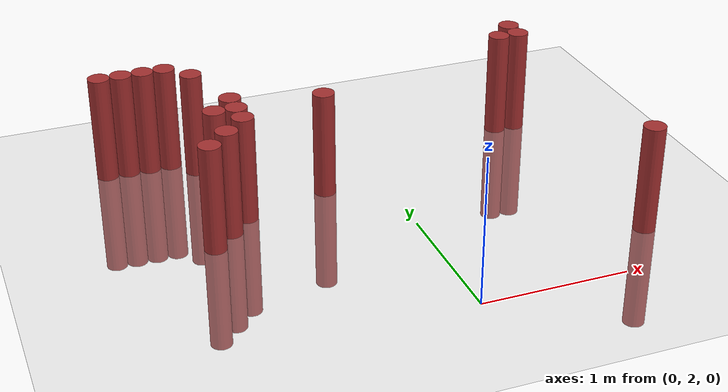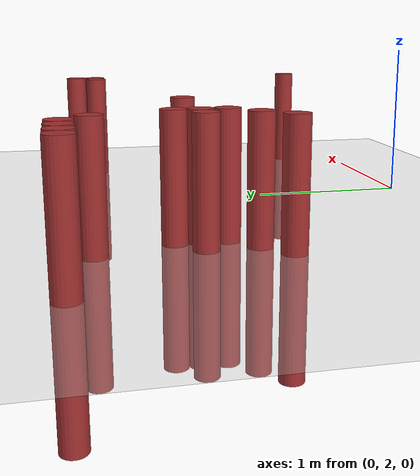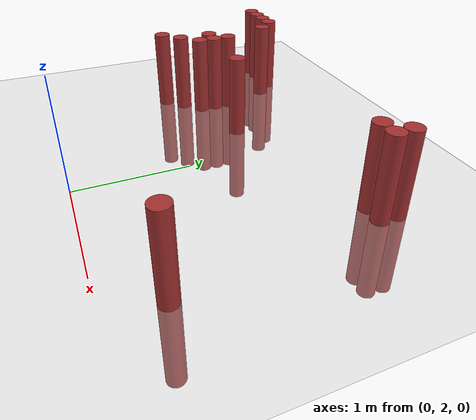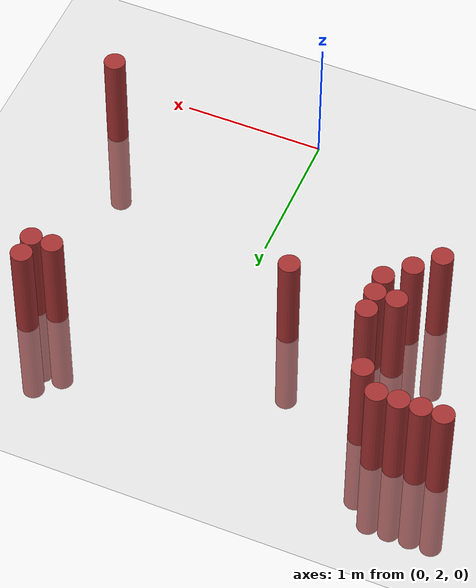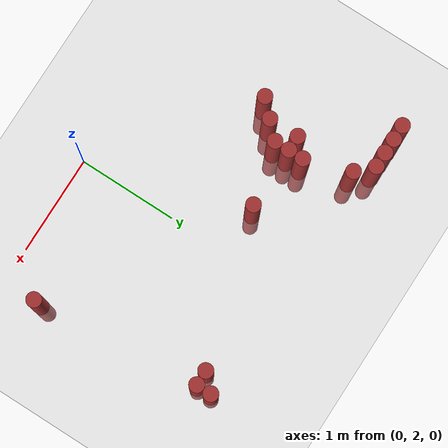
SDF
<sdf version="1.6">
 <world name="default">
  <model name="ground_plane">
   <static>1</static>
   <link name="link">
    <collision name="collision">
     <geometry><plane><normal>0 0 1</normal><size>100 100</size></plane></geometry>
     <surface><friction><ode><mu>100</mu><mu2>50</mu2></ode></friction></surface>
    </collision>
    <visual name="visual">
     <cast_shadows>0</cast_shadows>
     <geometry><plane><normal>0 0 1</normal><size>100 100</size></plane></geometry>
     <material>
      <script><uri>file://media/materials/scripts/gazebo.material</uri><name>Gazebo/Grey</name></script>
     </material>
    </visual>
   </link>
  </model>
  <model name="unit_cylinder_132">
   <static>1</static>
   <pose>-1.775000 4.375000 0.000000 0.000000 0.000000 0.000000</pose>
   <link name="link">
    <inertial>
     <mass>1</mass>
     <inertia><ixx>0.145833</ixx><ixy>0</ixy><ixz>0</ixz><iyy>0.145833</iyy><iyz>0</iyz><izz>0.125</izz></inertia>
    </inertial>
    <collision name="collision">
     <geometry><cylinder><radius>0.075000</radius><length>1.5</length></cylinder></geometry>
    </collision>
    <visual name="visual">
     <geometry><cylinder><radius>0.075000</radius><length>1.5</length></cylinder></geometry>
     <material>
      <ambient>0.648000 0.192000 0.192000 1</ambient>
      <diffuse>0.648000 0.192000 0.192000 1</diffuse>
     </material>
     <material>
      <script><name>Gazebo/Grey</name><uri>file://media/materials/scripts/gazebo.material</uri></script>
     </material>
    </visual>
   </link>
  </model>
  <model name="unit_cylinder_137">
   <static>1</static>
   <pose>-1.625000 4.375000 0.000000 0.000000 0.000000 0.000000</pose>
   <link name="link">
    <inertial>
     <mass>1</mass>
     <inertia><ixx>0.145833</ixx><ixy>0</ixy><ixz>0</ixz><iyy>0.145833</iyy><iyz>0</iyz><izz>0.125</izz></inertia>
    </inertial>
    <collision name="collision">
     <geometry><cylinder><radius>0.075000</radius><length>1.5</length></cylinder></geometry>
    </collision>
    <visual name="visual">
     <geometry><cylinder><radius>0.075000</radius><length>1.5</length></cylinder></geometry>
     <material>
      <ambient>0.648000 0.192000 0.192000 1</ambient>
      <diffuse>0.648000 0.192000 0.192000 1</diffuse>
     </material>
     <material>
      <script><name>Gazebo/Grey</name><uri>file://media/materials/scripts/gazebo.material</uri></script>
     </material>
    </visual>
   </link>
  </model>
  <model name="unit_cylinder_141">
   <static>1</static>
   <pose>-1.475000 4.375000 0.000000 0.000000 0.000000 0.000000</pose>
   <link name="link">
    <inertial>
     <mass>1</mass>
     <inertia><ixx>0.145833</ixx><ixy>0</ixy><ixz>0</ixz><iyy>0.145833</iyy><iyz>0</iyz><izz>0.125</izz></inertia>
    </inertial>
    <collision name="collision">
     <geometry><cylinder><radius>0.075000</radius><length>1.5</length></cylinder></geometry>
    </collision>
    <visual name="visual">
     <geometry><cylinder><radius>0.075000</radius><length>1.5</length></cylinder></geometry>
     <material>
      <ambient>0.648000 0.192000 0.192000 1</ambient>
      <diffuse>0.648000 0.192000 0.192000 1</diffuse>
     </material>
     <material>
      <script><name>Gazebo/Grey</name><uri>file://media/materials/scripts/gazebo.material</uri></script>
     </material>
    </visual>
   </link>
  </model>
  <model name="unit_cylinder_149">
   <static>1</static>
   <pose>-1.325000 3.175000 0.000000 0.000000 0.000000 0.000000</pose>
   <link name="link">
    <inertial>
     <mass>1</mass>
     <inertia><ixx>0.145833</ixx><ixy>0</ixy><ixz>0</ixz><iyy>0.145833</iyy><iyz>0</iyz><izz>0.125</izz></inertia>
    </inertial>
    <collision name="collision">
     <geometry><cylinder><radius>0.075000</radius><length>1.5</length></cylinder></geometry>
    </collision>
    <visual name="visual">
     <geometry><cylinder><radius>0.075000</radius><length>1.5</length></cylinder></geometry>
     <material>
      <ambient>0.648000 0.192000 0.192000 1</ambient>
      <diffuse>0.648000 0.192000 0.192000 1</diffuse>
     </material>
     <material>
      <script><name>Gazebo/Grey</name><uri>file://media/materials/scripts/gazebo.material</uri></script>
     </material>
    </visual>
   </link>
  </model>
  <model name="unit_cylinder_150">
   <static>1</static>
   <pose>-1.325000 4.375000 0.000000 0.000000 0.000000 0.000000</pose>
   <link name="link">
    <inertial>
     <mass>1</mass>
     <inertia><ixx>0.145833</ixx><ixy>0</ixy><ixz>0</ixz><iyy>0.145833</iyy><iyz>0</iyz><izz>0.125</izz></inertia>
    </inertial>
    <collision name="collision">
     <geometry><cylinder><radius>0.075000</radius><length>1.5</length></cylinder></geometry>
    </collision>
    <visual name="visual">
     <geometry><cylinder><radius>0.075000</radius><length>1.5</length></cylinder></geometry>
     <material>
      <ambient>0.648000 0.192000 0.192000 1</ambient>
      <diffuse>0.648000 0.192000 0.192000 1</diffuse>
     </material>
     <material>
      <script><name>Gazebo/Grey</name><uri>file://media/materials/scripts/gazebo.material</uri></script>
     </material>
    </visual>
   </link>
  </model>
  <model name="unit_cylinder_155">
   <static>1</static>
   <pose>-1.175000 3.325000 0.000000 0.000000 0.000000 0.000000</pose>
   <link name="link">
    <inertial>
     <mass>1</mass>
     <inertia><ixx>0.145833</ixx><ixy>0</ixy><ixz>0</ixz><iyy>0.145833</iyy><iyz>0</iyz><izz>0.125</izz></inertia>
    </inertial>
    <collision name="collision">
     <geometry><cylinder><radius>0.075000</radius><length>1.5</length></cylinder></geometry>
    </collision>
    <visual name="visual">
     <geometry><cylinder><radius>0.075000</radius><length>1.5</length></cylinder></geometry>
     <material>
      <ambient>0.648000 0.192000 0.192000 1</ambient>
      <diffuse>0.648000 0.192000 0.192000 1</diffuse>
     </material>
     <material>
      <script><name>Gazebo/Grey</name><uri>file://media/materials/scripts/gazebo.material</uri></script>
     </material>
    </visual>
   </link>
  </model>
  <model name="unit_cylinder_156">
   <static>1</static>
   <pose>-1.175000 3.625000 0.000000 0.000000 0.000000 0.000000</pose>
   <link name="link">
    <inertial>
     <mass>1</mass>
     <inertia><ixx>0.145833</ixx><ixy>0</ixy><ixz>0</ixz><iyy>0.145833</iyy><iyz>0</iyz><izz>0.125</izz></inertia>
    </inertial>
    <collision name="collision">
     <geometry><cylinder><radius>0.075000</radius><length>1.5</length></cylinder></geometry>
    </collision>
    <visual name="visual">
     <geometry><cylinder><radius>0.075000</radius><length>1.5</length></cylinder></geometry>
     <material>
      <ambient>0.648000 0.192000 0.192000 1</ambient>
      <diffuse>0.648000 0.192000 0.192000 1</diffuse>
     </material>
     <material>
      <script><name>Gazebo/Grey</name><uri>file://media/materials/scripts/gazebo.material</uri></script>
     </material>
    </visual>
   </link>
  </model>
  <model name="unit_cylinder_157">
   <static>1</static>
   <pose>-1.175000 4.225000 0.000000 0.000000 0.000000 0.000000</pose>
   <link name="link">
    <inertial>
     <mass>1</mass>
     <inertia><ixx>0.145833</ixx><ixy>0</ixy><ixz>0</ixz><iyy>0.145833</iyy><iyz>0</iyz><izz>0.125</izz></inertia>
    </inertial>
    <collision name="collision">
     <geometry><cylinder><radius>0.075000</radius><length>1.5</length></cylinder></geometry>
    </collision>
    <visual name="visual">
     <geometry><cylinder><radius>0.075000</radius><length>1.5</length></cylinder></geometry>
     <material>
      <ambient>0.648000 0.192000 0.192000 1</ambient>
      <diffuse>0.648000 0.192000 0.192000 1</diffuse>
     </material>
     <material>
      <script><name>Gazebo/Grey</name><uri>file://media/materials/scripts/gazebo.material</uri></script>
     </material>
    </visual>
   </link>
  </model>
  <model name="unit_cylinder_160">
   <static>1</static>
   <pose>-1.025000 3.475000 0.000000 0.000000 0.000000 0.000000</pose>
   <link name="link">
    <inertial>
     <mass>1</mass>
     <inertia><ixx>0.145833</ixx><ixy>0</ixy><ixz>0</ixz><iyy>0.145833</iyy><iyz>0</iyz><izz>0.125</izz></inertia>
    </inertial>
    <collision name="collision">
     <geometry><cylinder><radius>0.075000</radius><length>1.5</length></cylinder></geometry>
    </collision>
    <visual name="visual">
     <geometry><cylinder><radius>0.075000</radius><length>1.5</length></cylinder></geometry>
     <material>
      <ambient>0.648000 0.192000 0.192000 1</ambient>
      <diffuse>0.648000 0.192000 0.192000 1</diffuse>
     </material>
     <material>
      <script><name>Gazebo/Grey</name><uri>file://media/materials/scripts/gazebo.material</uri></script>
     </material>
    </visual>
   </link>
  </model>
  <model name="unit_cylinder_161">
   <static>1</static>
   <pose>-1.025000 3.625000 0.000000 0.000000 0.000000 0.000000</pose>
   <link name="link">
    <inertial>
     <mass>1</mass>
     <inertia><ixx>0.145833</ixx><ixy>0</ixy><ixz>0</ixz><iyy>0.145833</iyy><iyz>0</iyz><izz>0.125</izz></inertia>
    </inertial>
    <collision name="collision">
     <geometry><cylinder><radius>0.075000</radius><length>1.5</length></cylinder></geometry>
    </collision>
    <visual name="visual">
     <geometry><cylinder><radius>0.075000</radius><length>1.5</length></cylinder></geometry>
     <material>
      <ambient>0.648000 0.192000 0.192000 1</ambient>
      <diffuse>0.648000 0.192000 0.192000 1</diffuse>
     </material>
     <material>
      <script><name>Gazebo/Grey</name><uri>file://media/materials/scripts/gazebo.material</uri></script>
     </material>
    </visual>
   </link>
  </model>
  <model name="unit_cylinder_162">
   <static>1</static>
   <pose>-1.025000 3.775000 0.000000 0.000000 0.000000 0.000000</pose>
   <link name="link">
    <inertial>
     <mass>1</mass>
     <inertia><ixx>0.145833</ixx><ixy>0</ixy><ixz>0</ixz><iyy>0.145833</iyy><iyz>0</iyz><izz>0.125</izz></inertia>
    </inertial>
    <collision name="collision">
     <geometry><cylinder><radius>0.075000</radius><length>1.5</length></cylinder></geometry>
    </collision>
    <visual name="visual">
     <geometry><cylinder><radius>0.075000</radius><length>1.5</length></cylinder></geometry>
     <material>
      <ambient>0.648000 0.192000 0.192000 1</ambient>
      <diffuse>0.648000 0.192000 0.192000 1</diffuse>
     </material>
     <material>
      <script><name>Gazebo/Grey</name><uri>file://media/materials/scripts/gazebo.material</uri></script>
     </material>
    </visual>
   </link>
  </model>
  <model name="unit_cylinder_174">
   <static>1</static>
   <pose>-0.425000 3.625000 0.000000 0.000000 0.000000 0.000000</pose>
   <link name="link">
    <inertial>
     <mass>1</mass>
     <inertia><ixx>0.145833</ixx><ixy>0</ixy><ixz>0</ixz><iyy>0.145833</iyy><iyz>0</iyz><izz>0.125</izz></inertia>
    </inertial>
    <collision name="collision">
     <geometry><cylinder><radius>0.075000</radius><length>1.5</length></cylinder></geometry>
    </collision>
    <visual name="visual">
     <geometry><cylinder><radius>0.075000</radius><length>1.5</length></cylinder></geometry>
     <material>
      <ambient>0.648000 0.192000 0.192000 1</ambient>
      <diffuse>0.648000 0.192000 0.192000 1</diffuse>
     </material>
     <material>
      <script><name>Gazebo/Grey</name><uri>file://media/materials/scripts/gazebo.material</uri></script>
     </material>
    </visual>
   </link>
  </model>
  <model name="unit_cylinder_180">
   <static>1</static>
   <pose>1.075000 4.075000 0.000000 0.000000 0.000000 0.000000</pose>
   <link name="link">
    <inertial>
     <mass>1</mass>
     <inertia><ixx>0.145833</ixx><ixy>0</ixy><ixz>0</ixz><iyy>0.145833</iyy><iyz>0</iyz><izz>0.125</izz></inertia>
    </inertial>
    <collision name="collision">
     <geometry><cylinder><radius>0.075000</radius><length>1.5</length></cylinder></geometry>
    </collision>
    <visual name="visual">
     <geometry><cylinder><radius>0.075000</radius><length>1.5</length></cylinder></geometry>
     <material>
      <ambient>0.648000 0.192000 0.192000 1</ambient>
      <diffuse>0.648000 0.192000 0.192000 1</diffuse>
     </material>
     <material>
      <script><name>Gazebo/Grey</name><uri>file://media/materials/scripts/gazebo.material</uri></script>
     </material>
    </visual>
   </link>
  </model>
  <model name="unit_cylinder_183">
   <static>1</static>
   <pose>1.225000 4.075000 0.000000 0.000000 0.000000 0.000000</pose>
   <link name="link">
    <inertial>
     <mass>1</mass>
     <inertia><ixx>0.145833</ixx><ixy>0</ixy><ixz>0</ixz><iyy>0.145833</iyy><iyz>0</iyz><izz>0.125</izz></inertia>
    </inertial>
    <collision name="collision">
     <geometry><cylinder><radius>0.075000</radius><length>1.5</length></cylinder></geometry>
    </collision>
    <visual name="visual">
     <geometry><cylinder><radius>0.075000</radius><length>1.5</length></cylinder></geometry>
     <material>
      <ambient>0.648000 0.192000 0.192000 1</ambient>
      <diffuse>0.648000 0.192000 0.192000 1</diffuse>
     </material>
     <material>
      <script><name>Gazebo/Grey</name><uri>file://media/materials/scripts/gazebo.material</uri></script>
     </material>
    </visual>
   </link>
  </model>
  <model name="unit_cylinder_184">
   <static>1</static>
   <pose>1.225000 4.225000 0.000000 0.000000 0.000000 0.000000</pose>
   <link name="link">
    <inertial>
     <mass>1</mass>
     <inertia><ixx>0.145833</ixx><ixy>0</ixy><ixz>0</ixz><iyy>0.145833</iyy><iyz>0</iyz><izz>0.125</izz></inertia>
    </inertial>
    <collision name="collision">
     <geometry><cylinder><radius>0.075000</radius><length>1.5</length></cylinder></geometry>
    </collision>
    <visual name="visual">
     <geometry><cylinder><radius>0.075000</radius><length>1.5</length></cylinder></geometry>
     <material>
      <ambient>0.648000 0.192000 0.192000 1</ambient>
      <diffuse>0.648000 0.192000 0.192000 1</diffuse>
     </material>
     <material>
      <script><name>Gazebo/Grey</name><uri>file://media/materials/scripts/gazebo.material</uri></script>
     </material>
    </visual>
   </link>
  </model>
  <model name="unit_cylinder_186">
   <static>1</static>
   <pose>1.375000 2.425000 0.000000 0.000000 0.000000 0.000000</pose>
   <link name="link">
    <inertial>
     <mass>1</mass>
     <inertia><ixx>0.145833</ixx><ixy>0</ixy><ixz>0</ixz><iyy>0.145833</iyy><iyz>0</iyz><izz>0.125</izz></inertia>
    </inertial>
    <collision name="collision">
     <geometry><cylinder><radius>0.075000</radius><length>1.5</length></cylinder></geometry>
    </collision>
    <visual name="visual">
     <geometry><cylinder><radius>0.075000</radius><length>1.5</length></cylinder></geometry>
     <material>
      <ambient>0.648000 0.192000 0.192000 1</ambient>
      <diffuse>0.648000 0.192000 0.192000 1</diffuse>
     </material>
     <material>
      <script><name>Gazebo/Grey</name><uri>file://media/materials/scripts/gazebo.material</uri></script>
     </material>
    </visual>
   </link>
  </model>
 </world>
</sdf>
